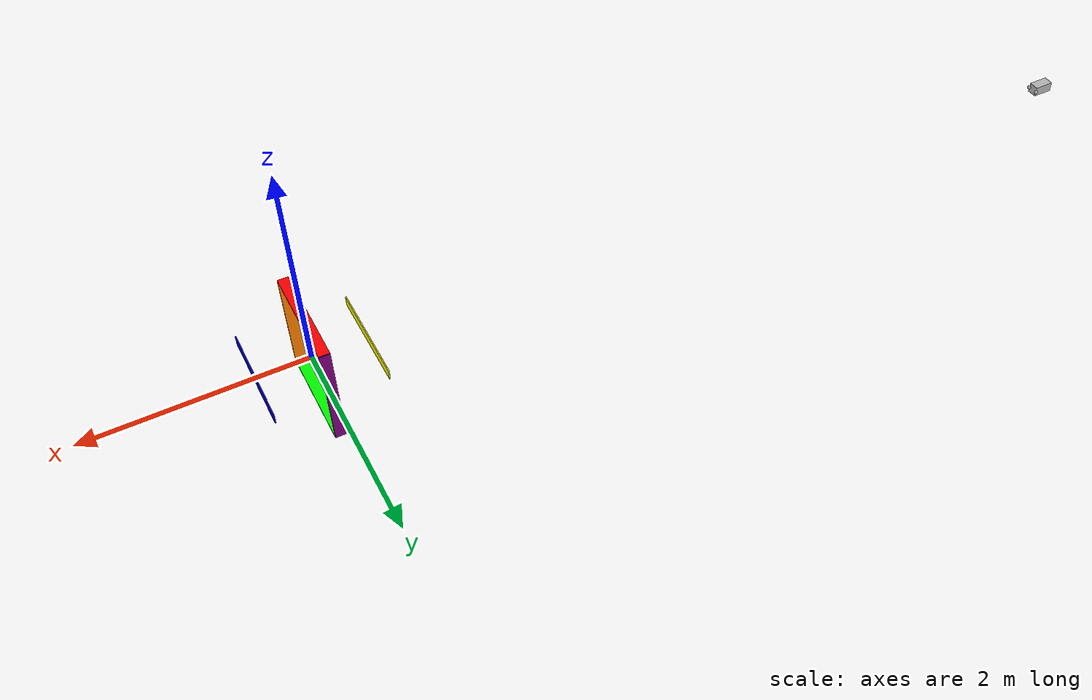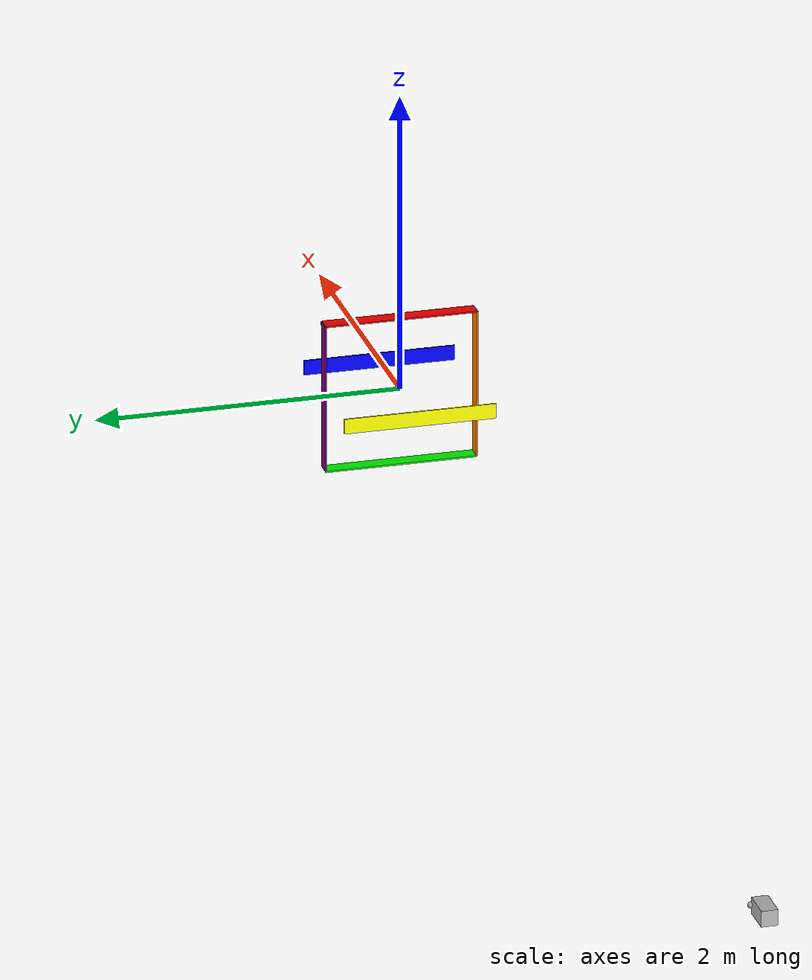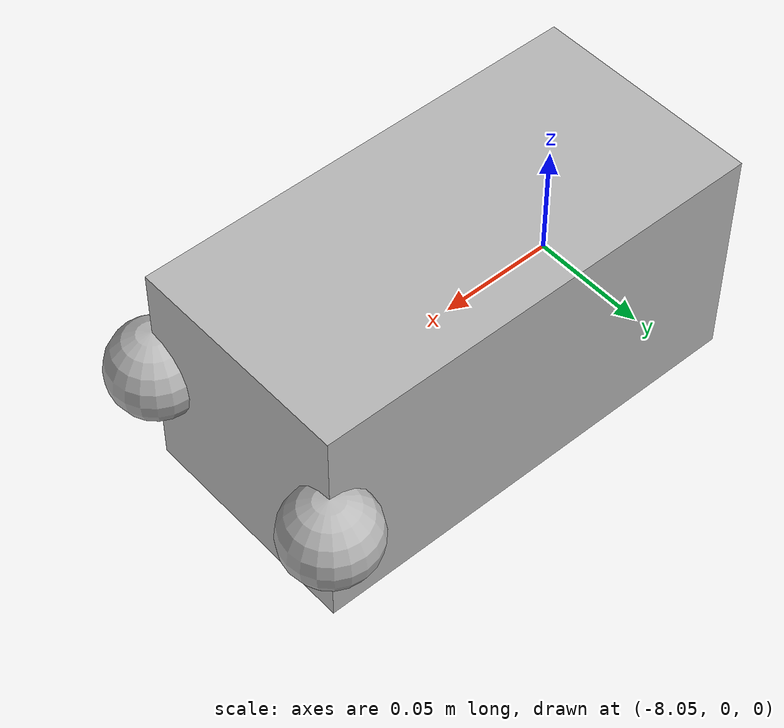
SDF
<?xml version="1.0" ?>
<sdf version="1.6">
  <world name="sand">

    <!-- Base Gazebo plugins -->
    <plugin
        filename="gz-sim-physics-system"
        name="gz::sim::systems::Physics">
    </plugin>
    <plugin
        filename="gz-sim-user-commands-system"
        name="gz::sim::systems::UserCommands">
    </plugin>
    <plugin
        filename="gz-sim-scene-broadcaster-system"
        name="gz::sim::systems::SceneBroadcaster">
    </plugin>
    <plugin
        filename="gz-sim-sensors-system"
        name="gz::sim::systems::Sensors">
    </plugin>

    <include>
      <uri>model://stereo_camera</uri>
      <pose>-8 0 0 0 0 0</pose>
    </include>

  <model name="multi_colored_cube">
    <static>true</static>

    <!-- Define each face with a different color -->
    <!-- Face 1 - Red -->
    <link name="face1">
      <pose>0 0 0.5 0 0 0</pose>
      <visual name="visual">
        <geometry>
          <box>
            <size>0.1 1 0.01</size>
          </box>
        </geometry>
        <material>
          <ambient>1 0 0 1</ambient> <!-- Red -->
          <diffuse>1 0 0 1</diffuse>
        </material>
      </visual>
    </link>

    <!-- Face 2 - Green -->
    <link name="face2">
      <pose>0 0 -0.5 0 0 0</pose>
      <visual name="visual">
        <geometry>
          <box>
            <size>0.1 1 0.01</size>
          </box>
        </geometry>
        <material>
          <ambient>0 1 0 1</ambient> <!-- Green -->
          <diffuse>0 1 0 1</diffuse>
        </material>
      </visual>
    </link>

    <!-- Face 3 - Blue -->
    <link name="face3">
      <pose>0.5 0 0 1.5708 1.5708 1.5708</pose> <!-- Rotate 90 degrees around Z-axis -->
      <visual name="visual">
        <geometry>
          <box>
            <size>0.1 1 0.01</size>
          </box>
        </geometry>
        <material>
          <ambient>0 0 1 1</ambient> <!-- Blue -->
          <diffuse>0 0 1 0</diffuse>
        </material>
      </visual>
    </link>

    <!-- Face 4 - Yellow -->
    <link name="face4">
      <pose>-0.5 0 0 1.5708 1.5708 1.5708</pose>
      <visual name="visual">
        <geometry>
          <box>
            <size>0.1 1 0.01</size>
          </box>
        </geometry>l
        <material>
          <ambient>1 1 0 0</ambient> <!-- Yellow -->
          <diffuse>1 1 0 0</diffuse>
        </material>
      </visual>
    </link>

    <!-- Face 5 - Purple -->
    <link name="face5">
      <pose>0 0.5 0 1.5708 0 0</pose> <!-- Rotate 90 degrees around X-axis -->
      <visual name="visual">
        <geometry>
          <box>
            <size>0.1 1 0.01</size>
          </box>
        </geometry>
        <material>
          <ambient>0.5 0 0.5 1</ambient> <!-- Purple -->
          <diffuse>0.5 0 0.5 1</diffuse>
        </material>
      </visual>
    </link>

    <!-- Face 6 - Orange -->
    <link name="face6">
      <pose>0 -0.5 0 1.5708 0 0</pose>
      <visual name="visual">
        <geometry>
          <box>
            <size>0.1 1 0.01</size>
          </box>
        </geometry>
        <material>
          <ambient>1 0.5 0 1</ambient> <!-- Orange -->
          <diffuse>1 0.5 0 1</diffuse>
        </material>
      </visual>
    </link>
  </model>

  </world>
</sdf>

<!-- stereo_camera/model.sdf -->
<sdf version="1.6">
    <model name="stereo_camera_model">
        <static>true</static>
        <link name="base_link">
            <visual name="base_visual">
                <geometry>
                    <box>
                        <size>0.2 0.1 0.1</size>
                    </box>
                </geometry>
            </visual>
        </link>

        <!-- Left Camera -->
        <link name="left_camera_link">
            <pose>0.1 0.05 0 0 0 0</pose>
            <visual name="left_camera_visual">
                <geometry>
                    <sphere>
                        <radius>0.02</radius>
                    </sphere>
                </geometry>
            </visual>
            <sensor name="left_camera_sensor" type="camera">
                <camera>
          <vertical_fov>1.3962634</vertical_fov>
                    <image>
                        <width>1920</width>
                        <height>1440</height>
                    </image>
                    <clip>
                        <near>0.1</near>
                        <far>100</far>
                    </clip>
                </camera>
                <always_on>1</always_on>
                <update_rate>10</update_rate>
                <visualize>true</visualize>
                <topic>stereo_left</topic>
            </sensor>
        </link>

        <!-- Right Camera -->
        <link name="right_camera_link">
            <pose>0.1 -0.05 0 0 0 0</pose>
            <visual name="right_camera_visual">
                <geometry>
                    <sphere>
                        <radius>0.02</radius>
                    </sphere>
                </geometry>
            </visual>
            <sensor name="right_camera_sensor" type="camera">
                <camera>
          <vertical_fov>1.3962634</vertical_fov>
                    <image>
                        <width>1920</width>
                        <height>1440</height>
                    </image>
                    <clip>
                        <near>0.1</near>
                        <far>100</far>
                    </clip>
                </camera>
                <always_on>1</always_on>
                <update_rate>10</update_rate>
                <visualize>true</visualize>
                <topic>stereo_right</topic>
            </sensor>
        </link>
    </model>
</sdf>
